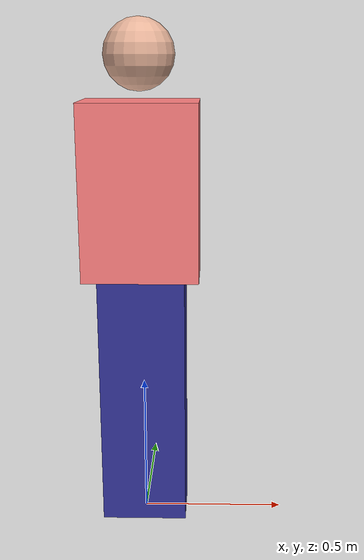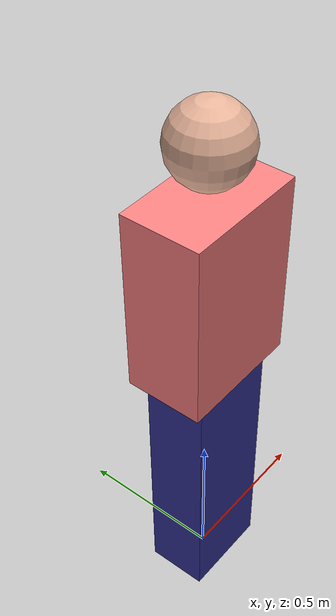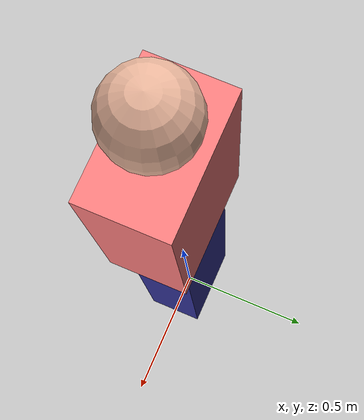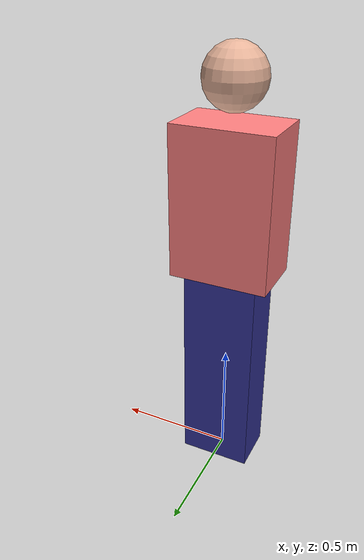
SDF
<?xml version="1.0" ?>
<sdf version="1.6">
  <model name="patient">

    <!-- Base link (simple mesh) -->
    <link name="base_link">
      <inertial>
        <mass>60</mass>
        <inertia>
          <ixx>10.0</ixx>
          <iyy>10.0</iyy>
          <izz>1.0</izz>
          <ixy>0</ixy><ixz>0</ixz><iyz>0</iyz>
        </inertia>
        <pose>0 0 0.8 0 0 0</pose>  <!-- 무게중심 -->
      </inertial>

      <!-- leg (simple box) -->
      <visual name="legs">
        <pose>0 0 0.45 0 0 0</pose>
        <geometry>
          <box><size>0.30 0.20 0.90</size></box>
        </geometry>
        <material>
          <ambient>0.2 0.2 0.6 1</ambient>
          <diffuse>0.2 0.2 0.6 1</diffuse>
        </material>
      </visual>
      <collision name="legs_col">
        <pose>0 0 0.45 0 0 0</pose>
        <geometry>
          <box><size>0.30 0.20 0.90</size></box>
        </geometry>
      </collision>

      <!-- body -->
      <visual name="torso">
        <pose>0 0 1.20 0 0 0</pose>
        <geometry>
          <box><size>0.40 0.25 0.60</size></box>
        </geometry>
        <material>
          <ambient>1.0 0.5 0.5 1</ambient>
          <diffuse>1.0 0.5 0.5 1</diffuse>
        </material>
      </visual>
      <collision name="torso_col">
        <pose>0 0 1.20 0 0 0</pose>
        <geometry>
          <box><size>0.40 0.25 0.60</size></box>
        </geometry>
      </collision>

      <!-- head -->
      <visual name="head">
        <pose>0 0 1.65 0 0 0</pose>
        <geometry>
          <sphere><radius>0.12</radius></sphere>
        </geometry>
        <material>
          <ambient>0.9 0.7 0.6 1</ambient>
          <diffuse>0.9 0.7 0.6 1</diffuse>
        </material>
      </visual>
      <collision name="head_col">
        <pose>0 0 1.65 0 0 0</pose>
        <geometry>
          <sphere><radius>0.12</radius></sphere>
        </geometry>
      </collision>
    </link>

    <!-- Planar movement (PHASE 7: upgrade) -->
    <plugin name="patient_move" filename="libgazebo_ros_planar_move.so">
      <commandTopic>patient/cmd_vel</commandTopic>
      <odometryTopic>patient/odom</odometryTopic>
      <odometryFrame>patient/odom</odometryFrame>
      <odometryRate>30.0</odometryRate>
      <robotBaseFrame>base_link</robotBaseFrame>
    </plugin>

  </model>
</sdf>
